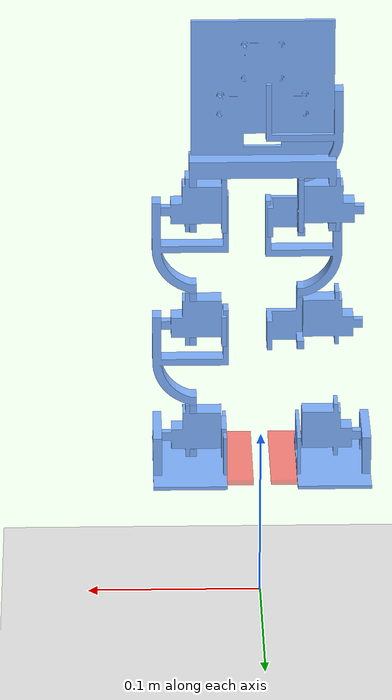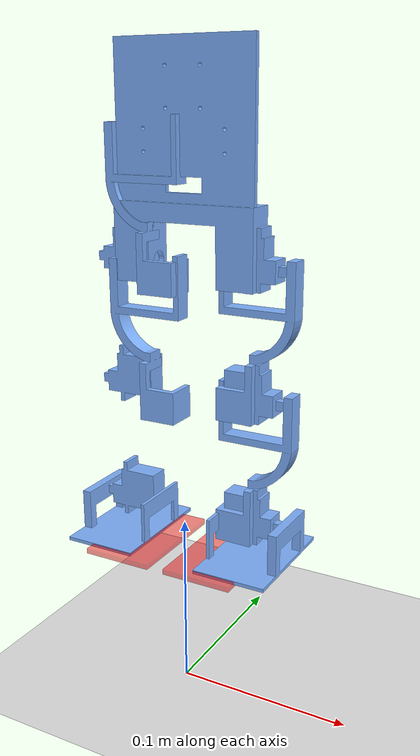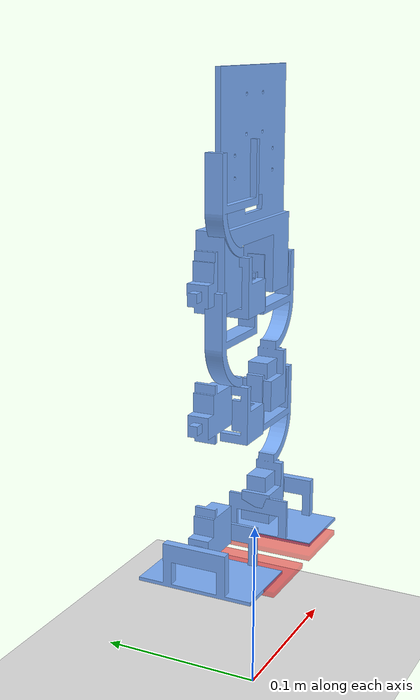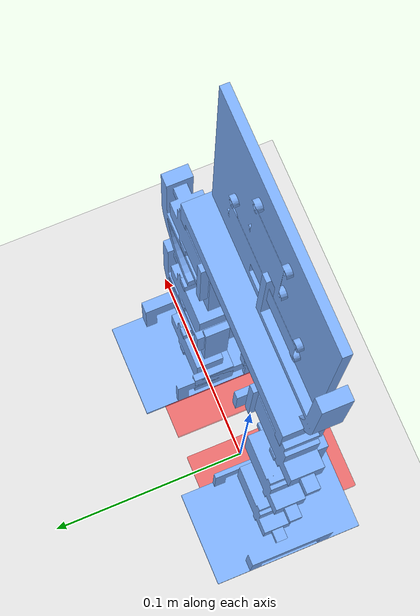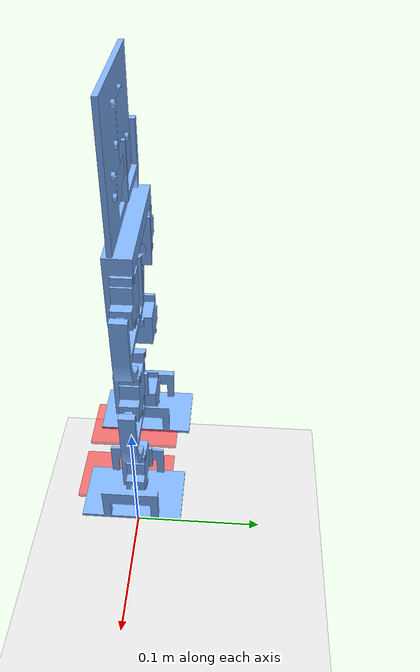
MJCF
<?xml version="1.0" ?>
<mujoco model="assemblyDerived_v8">
  <compiler angle="radian"/>
  <default>
    <mesh scale="0.001 0.001 0.001"/>
    <geom rgba="0.5 0.7 1.0 1" contype="0" conaffinity="0"/>
    <joint damping="0.005"/>
    <position kp="0.3"/>
  </default>
  <asset>
    <mesh file="meshes/derivedBody_v1_1.stl" name="derivedBody_v1_1_mesh" />
    <mesh file="meshes/servo_v9_1.stl" name="servo_v9_1_mesh"/>
    <mesh file="meshes/derivedLeg_v1_1.stl" name="derivedLeg_v1_1_mesh"/>
    <mesh file="meshes/servo_v9_3.stl" name="servo_v9_3_mesh"/>
    <mesh file="meshes/derivedLeg_v1_2.stl" name="derivedLeg_v1_2_mesh"/>
    <mesh file="meshes/servo_v9_5.stl" name="servo_v9_5_mesh"/>
    <mesh file="meshes/derivedFoot_v2_1.stl" name="derivedFoot_v2_1_mesh"/>
    <mesh file="meshes/servo_v9_2.stl" name="servo_v9_2_mesh"/>
    <mesh file="meshes/derivedLeg_v1(Mirror)_1.stl" name="derivedLeg_v1(Mirror)_1_mesh"/>
    <mesh file="meshes/servo_v9_4.stl" name="servo_v9_4_mesh"/>
    <mesh file="meshes/derivedLeg_v1(Mirror)_2.stl" name="derivedLeg_v1(Mirror)_2_mesh"/>
    <mesh file="meshes/servo_v9_6.stl" name="servo_v9_6_mesh"/>
    <mesh file="meshes/derivedFoot_v2(Mirror)_1.stl" name="derivedFoot_v2(Mirror)_1_mesh"/>
  </asset>
  <actuator>
    <position name="derivedLeg_v1_1Revolute_3" joint="derivedLeg_v1_1Revolute_3"/>
    <position name="derivedLeg_v1_2Revolute_7" joint="derivedLeg_v1_2Revolute_7"/>
    <position name="derivedFoot_v2_1Revolute_11" joint="derivedFoot_v2_1Revolute_11"/>
    <position name="derivedLeg_v1(Mirror)_1Revolute_4" joint="derivedLeg_v1(Mirror)_1Revolute_4"/>
    <position name="derivedLeg_v1(Mirror)_2Revolute_8" joint="derivedLeg_v1(Mirror)_2Revolute_8"/>
    <position name="derivedFoot_v2(Mirror)_1Revolute_12" joint="derivedFoot_v2(Mirror)_1Revolute_12"/>
  </actuator>
  <worldbody>
    <geom name="floor" size="0 0 .05" type="plane" condim="3" rgba="0.9 0.9 0.9 1" contype="1" conaffinity="1"/>
    <light mode="targetbodycom" target="body" diffuse=".8 .8 .8" specular="0.3 0.3 0.3" pos="0 -6 4" cutoff="30"/>
    <body name="body" pos="0 0 0.2344">
      <freejoint name="root"/>
      <geom density="248" type="mesh" mesh="derivedBody_v1_1_mesh"/>
      <body name="servo_v9_1">
        <geom mass="0.013" type="mesh" mesh="servo_v9_1_mesh"/>
        <body name="derivedLeg_v1_1">
          <joint axis="1 0 0" name="derivedLeg_v1_1Revolute_3" type="hinge" pos="-0.0399 0.0043 -0.0744" range="-1.5 1.5"/>
          <geom density="248" type="mesh" mesh="derivedLeg_v1_1_mesh"/>
          <body name="servo_v9_3">
            <geom mass="0.013" type="mesh" mesh="servo_v9_3_mesh"/>
            <body name="derivedLeg_v1_2">
              <joint axis="1 0 0" name="derivedLeg_v1_2Revolute_7" type="hinge" pos="-0.0399 0.0043 -0.1444" range="-1.5 1.5"/>
              <geom density="248" type="mesh" mesh="derivedLeg_v1_2_mesh"/>
              <body name="servo_v9_5">
                <geom mass="0.013" type="mesh" mesh="servo_v9_5_mesh"/>
                <body name="derivedFoot_v2_1">
                  <joint axis="1 0 0" name="derivedFoot_v2_1Revolute_11" type="hinge" pos="-0.0399 0.0043 -0.2144" range="-1.5 1.5"/>
                  <geom density="248" type="mesh" mesh="derivedFoot_v2_1_mesh"/>
                  <geom type="box"  pos="-0.025 0.0 -0.149091" size="0.02 0.032 0.0015" rgba="1 0 0 0.5" contype="1" conaffinity="1" density="248" friction="1 0.005 0.0001"/>
                </body>
              </body>
            </body>
          </body>
        </body>
      </body>
      <body name="servo_v9_2">
        <geom mass="0.013" type="mesh" mesh="servo_v9_2_mesh"/>
        <body name="derivedLeg_v1(Mirror)_1">
          <joint axis="1 0 0" name="derivedLeg_v1(Mirror)_1Revolute_4" type="hinge" pos="0.0399 0.0043 -0.0744" range="-1.5 1.5"/>
          <geom density="248" type="mesh" mesh="derivedLeg_v1(Mirror)_1_mesh"/>
          <body name="servo_v9_4">
            <geom mass="0.013" type="mesh" mesh="servo_v9_4_mesh"/>
            <body name="derivedLeg_v1(Mirror)_2">
              <joint axis="1 0 0" name="derivedLeg_v1(Mirror)_2Revolute_8" type="hinge" pos="0.0399 0.0043 -0.1444" range="-1.5 1.5"/>
              <geom density="248" type="mesh" mesh="derivedLeg_v1(Mirror)_2_mesh"/>
              <body name="servo_v9_6">
                <geom mass="0.013" type="mesh" mesh="servo_v9_6_mesh"/>
                <body name="derivedFoot_v2(Mirror)_1">
                  <joint axis="1 0 0" name="derivedFoot_v2(Mirror)_1Revolute_12" type="hinge" pos="0.0399 0.0043 -0.2144" range="-1.5 1.5"/>
                  <geom density="248" type="mesh" mesh="derivedFoot_v2(Mirror)_1_mesh"/>
                  <geom type="box" pos="0.025 0.0 -0.149091" size="0.02 0.032 0.0015" rgba="1 0 0 0.5" contype="1" conaffinity="1" density="248" friction="1 0.005 0.0001"/>
                </body>
              </body>
            </body>
          </body>
        </body>
      </body>
    </body>

    <camera name="track" mode="trackcom" pos="0 -2.1 0.5" xyaxes="1 0 0 0 0.2 1" target="body"/>
  </worldbody>
</mujoco>
